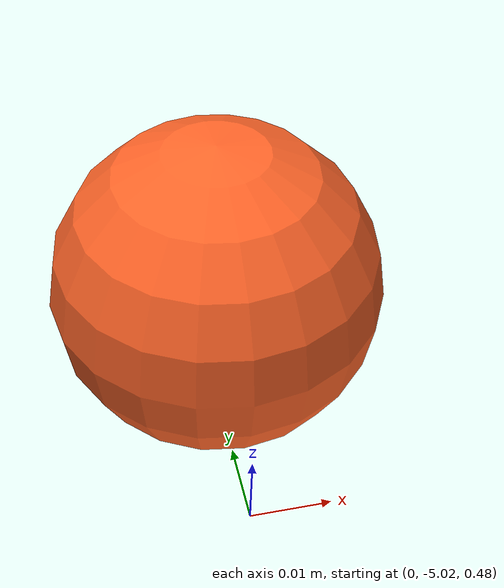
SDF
<?xml version='1.0'?>
<sdf version='1.6'>
  <model name='orange_ping_pong_ball'>
    <pose>0 -5 0 0 0 0</pose>
    <link name='link'>
      <pose frame=''>0 0 0.5 0 -0 0</pose>
      <self_collide>0</self_collide>
      <inertial>
        <pose frame=''>0 0 0 0 -0 0</pose>
        <inertia>
          <ixx>4.32e-05</ixx>
          <ixy>0</ixy>
          <ixz>0</ixz>
          <iyy>4.32e-05</iyy>
          <iyz>0</iyz>
          <izz>4.32e-05</izz>
        </inertia>
        <mass>0.0027</mass>
      </inertial>
      <enable_wind>0</enable_wind>
      <kinematic>0</kinematic>
      <gravity>1</gravity>
      <visual name='visual'>
        <geometry>
          <sphere>
            <radius>0.02</radius>
          </sphere>
        </geometry>
        <material>
          <shader type='pixel'>
            <normal_map>__default__</normal_map>
          </shader>
          <script>
            <name>ModelPreview_1::link::visual_MATERIAL_</name>
          </script>
          <ambient>1 0.392 0.156 1</ambient>
          <diffuse>1 0.392 0.156 1</diffuse>
          <specular>0.01 0.01 0.01 1</specular>
          <emissive>1 0.392 0.156 1</emissive>
        </material>
        <pose frame=''>0 0 0 0 -0 0</pose>
        <transparency>0</transparency>
        <cast_shadows>1</cast_shadows>
      </visual>
      <collision name='collision'>
        <laser_retro>0</laser_retro>
        <max_contacts>10</max_contacts>
        <pose frame=''>0 0 0 0 -0 0</pose>
        <geometry>
          <sphere>
            <radius>0.02</radius>
          </sphere>
        </geometry>
        <surface>
          <friction>
            <ode>
              <mu>1</mu>
              <mu2>1</mu2>
              <fdir1>0 0 0</fdir1>
              <slip1>0</slip1>
              <slip2>0</slip2>
            </ode>
            <torsional>
              <coefficient>1</coefficient>
              <patch_radius>0</patch_radius>
              <surface_radius>0</surface_radius>
              <use_patch_radius>1</use_patch_radius>
              <ode>
                <slip>0</slip>
              </ode>
            </torsional>
          </friction>
          <bounce>
            <restitution_coefficient>0</restitution_coefficient>
            <threshold>1e+06</threshold>
          </bounce>
          <contact>
            <collide_without_contact>0</collide_without_contact>
            <collide_without_contact_bitmask>1</collide_without_contact_bitmask>
            <collide_bitmask>1</collide_bitmask>
            <ode>
              <soft_cfm>0</soft_cfm>
              <soft_erp>0.2</soft_erp>
              <kp>1e+13</kp>
              <kd>1</kd>
              <max_vel>0.01</max_vel>
              <min_depth>0</min_depth>
            </ode>
            <bullet>
              <split_impulse>1</split_impulse>
              <split_impulse_penetration_threshold>-0.01</split_impulse_penetration_threshold>
              <soft_cfm>0</soft_cfm>
              <soft_erp>0.2</soft_erp>
              <kp>1e+13</kp>
              <kd>1</kd>
            </bullet>
          </contact>
        </surface>
      </collision>
    </link>
    <static>0</static>
    <allow_auto_disable>1</allow_auto_disable>
  </model>
</sdf>
